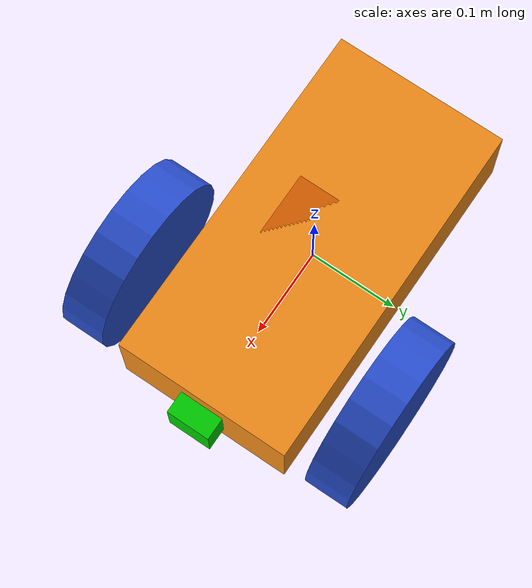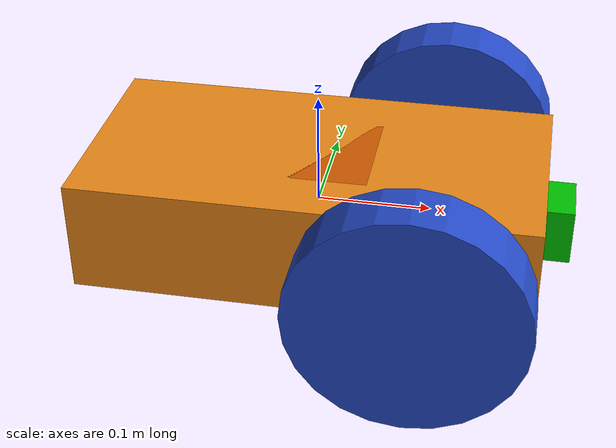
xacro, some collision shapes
<?xml version='1.0'?>

<robot name="diffbot" xmlns:xacro="http://www.ros.org/wiki/xacro">

  <xacro:property name="cameraSize" value="0.05"/>
  <xacro:property name="cameraMass" value="0.1"/>
  <xacro:property name="imuSize" value="0.05"/>
  <xacro:property name="imuMass" value="0.1"/>

  <xacro:include filename="$(find diffbot)/src/diffbot_description/urdf/diffbot_gazebo_plugins.xacro" />
  <xacro:include filename="$(find diffbot)/src/diffbot_description/urdf/materials.xacro" />
  <xacro:include filename="$(find diffbot)/src/diffbot_description/urdf/macros.xacro" />

  <link name='chassis'>
    <pose>0 0 0 0 0 0</pose>

    <inertial>
      <mass value="10.0"/>
      <origin xyz="0 0 0" rpy=" 0 0 0"/>
      <inertia
          ixx="0.5" ixy="0" ixz="0"
          iyy="1.0" iyz="0"
          izz="0.1"/>
    </inertial>

    <collision name='collision'>
      <geometry>
        <box size=".4 .2 .1"/>
      </geometry>
    </collision>

    <visual name='chassis_visual'>
      <origin xyz="0 0 0" rpy=" 0 0 0"/>
      <geometry>
        <box size=".4 .2 .1"/>
      </geometry>
    </visual>

    <collision name='collision'>
      <geometry>
        <box size=".4 .2 .1"/>
      </geometry>
    </collision>

    <visual name='chassis_visual'>
      <origin xyz="0 0 0" rpy=" 0 0 0"/>
      <geometry>
        <box size=".4 .2 .1"/>
      </geometry>
    </visual>

    <collision name='caster_collision'>
      <origin xyz="-0.15 0 -0.05" rpy=" 0 0 0"/>
      <geometry>
        <sphere radius="0.05"/>
      </geometry>
      <surface>
        <friction>
          <ode>
            <mu>0</mu>
            <mu2>0</mu2>
            <slip1>1.0</slip1>
            <slip2>1.0</slip2>
          </ode>
        </friction>
      </surface>
    </collision>

    <visual name='caster_visual'>
      <origin xyz="-0.15 0 -0.05" rpy=" 0 0 0"/>
      <geometry>
        <sphere radius="0.05"/>
      </geometry>
    </visual>
  </link>

  <link name="left_wheel">
    <!--origin xyz="0.1 0.13 0.1" rpy="0 1.5707 1.5707"/-->
    <collision name="collision">
      <origin xyz="0 0 0" rpy="0 1.5707 1.5707"/>
      <geometry>
        <cylinder radius="0.1" length="0.05"/>
      </geometry>
    </collision>
    <visual name="left_wheel_visual">
      <origin xyz="0 0 0" rpy="0 1.5707 1.5707"/>
      <geometry>
        <cylinder radius="0.1" length="0.05"/>
      </geometry>
    </visual>
    <inertial>
      <origin xyz="0 0 0" rpy="0 1.5707 1.5707"/>
      <mass value="5"/>
      <cylinder_inertia m="5" r="0.1" h="0.05"/>
      <inertia
        ixx="1.0" ixy="0.0" ixz="0.0"
        iyy="1.0" iyz="0.0"
        izz="1.0"/>
    </inertial>
  </link>

  <link name="right_wheel">
    <!--origin xyz="0.1 -0.13 0.1" rpy="0 1.5707 1.5707"/-->
    <collision name="collision">
      <origin xyz="0 0 0" rpy="0 1.5707 1.5707"/>
      <geometry>
        <cylinder radius="0.1" length="0.05"/>
      </geometry>
    </collision>
    <visual name="right_wheel_visual">
      <origin xyz="0 0 0" rpy="0 1.5707 1.5707"/>
      <geometry>
        <cylinder radius="0.1" length="0.05"/>
      </geometry>
    </visual>
    <inertial>
      <origin xyz="0 0 0" rpy="0 1.5707 1.5707"/>
      <mass value="5"/>
      <cylinder_inertia m="5" r="0.1" h="0.05"/>
      <inertia
        ixx="1.0" ixy="0.0" ixz="0.0"
        iyy="1.0" iyz="0.0"
        izz="1.0"/>
    </inertial>
  </link>

  <joint type="continuous" name="left_wheel_hinge">
    <origin xyz="0.1 0.15 0" rpy="0 0 0"/>
    <child link="left_wheel"/>
    <parent link="chassis"/>
    <axis xyz="0 1 0" rpy="0 0 0"/>
    <limit effort="100" velocity="100"/>
    <joint_properties damping="0.0" friction="0.0"/>
  </joint>

  <joint type="continuous" name="right_wheel_hinge">
    <origin xyz="0.1 -0.15 0" rpy="0 0 0"/>
    <child link="right_wheel"/>
    <parent link="chassis"/>
    <axis xyz="0 1 0" rpy="0 0 0"/>
    <limit effort="100" velocity="100"/>
    <joint_properties damping="0.0" friction="0.0"/>
  </joint>

<!--create the imu sensor-->
  <link name="imu_link">
    <collision>
      <origin xyz="0 0 0" rpy="0 0 0"/>
      <geometry>
        <box size="0.1 0.1 0.1"/>
      </geometry>
    </collision>

    <visual>
      <origin xyz="0 0 0" rpy="0 0 0"/>
      <geometry>
        <box size=".01 .01 .01"/>
      </geometry>
      <material name="green"/>
    </visual>

    <inertial>
      <mass value="${imuMass}" />
      <origin xyz="0 0 0" rpy="0 0 0"/>
      <box_inertia m="${imuMass}" x="0.4" y="0.2" z="0.1" />
      <inertia ixx="1e-6" ixy="0" ixz="0" iyy="1e-6" iyz="0" izz="1e-6" />
    </inertial>
  </link>

  <joint name="imu_joint" type="fixed">
    <axis xyz="0 0 0" />
    <origin xyz="0 0 0" rpy="0 0 0"/>
    <parent link="chassis"/>
    <child link="imu_link"/>
  </joint>

  <link name="camera">
    <collision>
      <origin xyz="0 0 0" rpy="0 0 0"/>
      <geometry>
        <box size="${cameraSize} ${cameraSize} ${cameraSize}"/>
      </geometry>
    </collision>

    <visual>
      <origin xyz="0 0 0" rpy="0 0 0"/>
      <geometry>
        <box size="${cameraSize} ${cameraSize} ${cameraSize}"/>
      </geometry>
      <material name="green"/>
    </visual>

    <inertial>
      <mass value="${cameraMass}" />
      <origin xyz="0 0 0" rpy="0 0 0"/>
      <box_inertia m="${cameraMass}" x="${cameraSize}" y="${cameraSize}" z="${cameraSize}" />
      <inertia ixx="1e-6" ixy="0" ixz="0" iyy="1e-6" iyz="0" izz="1e-6" />
    </inertial>
  </link>

  <joint name="camera_joint" type="fixed">
    <axis xyz="0 1 0" />
    <origin xyz=".2 0 0" rpy="0 0 0"/>
    <parent link="chassis"/>
    <child link="camera"/>
  </joint>

  <joint name="hokuyo_joint" type="fixed">
    <axis xyz="0 1 0" />
    <origin xyz="0 0 0" rpy="0 0 0"/>
    <parent link="chassis"/>
    <child link="hokuyo"/>
  </joint>

  <!-- Hokuyo Laser -->
  <link name="hokuyo">
    <collision>
      <origin xyz="0 0 0" rpy="0 0 0"/>
      <geometry>
    <box size="0.1 0.1 0.1"/>
      </geometry>
    </collision>

    <visual>
      <origin xyz="0 0 0" rpy="0 0 0"/>
      <geometry>
        <mesh filename="package:$(find diffbot)/src/diffbot_description/urdf/meshes/hokuyo.dae"/>
      </geometry>
    </visual>

    <inertial>
      <mass value="1e-5" />
      <origin xyz="0 0 0" rpy="0 0 0"/>
      <inertia ixx="1e-6" ixy="0" ixz="0" iyy="1e-6" iyz="0" izz="1e-6" />
    </inertial>
  </link>

</robot>

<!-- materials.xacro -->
<!--macro defining the colour of the various parts of the differential drive robot-->
	<!--Source: richard05. 2020. mybot_ws. https://github.com/richardw05/mybot_ws. accessed: 20 September 2020-->
<robot>

  <material name="black">
    <color rgba="0.0 0.0 0.0 1.0"/>
  </material>

  <material name="blue">
    <color rgba="0.0 0.0 0.8 1.0"/>
  </material>

  <material name="green">
    <color rgba="0.0 0.8 0.0 1.0"/>
  </material>

  <material name="grey">
    <color rgba="0.2 0.2 0.2 1.0"/>
  </material>

  <material name="orange">
    <color rgba="${255/255} ${108/255} ${10/255} 1.0"/>
  </material>

  <material name="brown">
    <color rgba="${222/255} ${207/255} ${195/255} 1.0"/>
  </material>

  <material name="red">
    <color rgba="0.8 0.0 0.0 1.0"/>
  </material>

  <material name="white">
    <color rgba="1.0 1.0 1.0 1.0"/>
  </material>

</robot>
